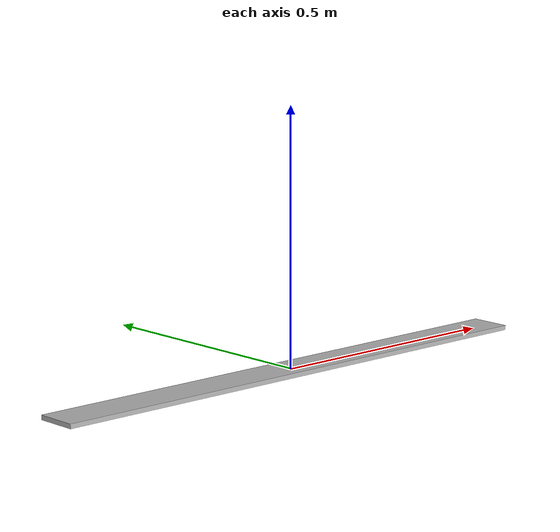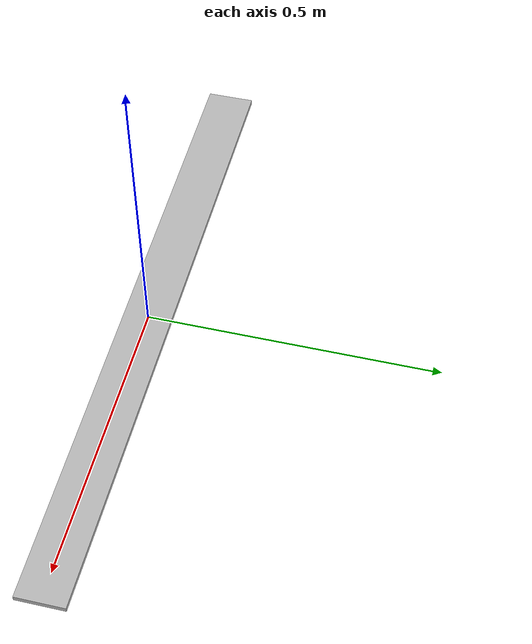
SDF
<?xml version='1.0'?>
<sdf version='1.6'>
  <model name='agv_path_stop_2021'>
    <static>true</static>
    <link name="link">
      <pose>0 0 0 0 0 0</pose>
      <visual name="visual">
        <geometry>
          <box>
            <size>1.105450 0.081839 0.009</size>
          </box>
        </geometry>
        <material>
          <script>
            <uri>model://agv_path_stop/materials/scripts</uri>
            <uri>model://agv_path_stop/materials/textures</uri>
            <name>AGVPathStopTexture</name>
          </script>
        </material>
      </visual>

    </link>
  </model>
</sdf>
